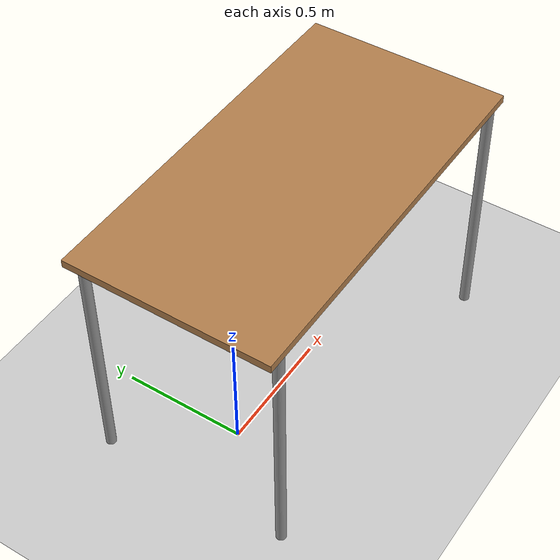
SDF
<?xml version="1.0" ?>
<sdf version="1.4">
  <world name="default">
    <include>
      <uri>model://ground_plane</uri>
    </include>
    <include>
      <uri>model://sun</uri>
    </include>

    <model name="table">
      <include>
        <uri>model://table</uri>
      </include>
      <pose>0.4 0 .002 0 0 0</pose>
    </model>

    <physics type='ode'>
      <ode>
        <solver>
          <type>quick</type>
          <iters>1000</iters>
          <sor>1.3</sor>
        </solver>
        <constraints>
          <cfm>0</cfm>
          <erp>0.2</erp>
          <contact_max_correcting_vel>100</contact_max_correcting_vel>
          <contact_surface_layer>0.001</contact_surface_layer>
        </constraints>
      </ode>
      <max_step_size>0.002</max_step_size>
      <real_time_factor>1</real_time_factor>
      <real_time_update_rate>500</real_time_update_rate>
      <gravity>0 0 -9.8</gravity>
    </physics>
  </world>
</sdf>

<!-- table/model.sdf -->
<sdf version="1.5">
  <model name="table">
    <static>true</static>
    <link name="link">
      <collision name="surface">
        <pose>0 0 1.0 0 0 0</pose>
        <geometry>
          <box>
            <size>1.5 0.8 0.03</size>
          </box>
        </geometry>
        <surface>
          <friction>
            <ode>
              <mu>0.6</mu>
              <mu2>0.6</mu2>
            </ode>
          </friction>
        </surface>
      </collision>
      <visual name="visual1">
        <pose>0 0 1.0 0 0 0</pose>
        <geometry>
          <box>
            <size>1.5 0.8 0.03</size>
          </box>
        </geometry>
        <material>
          <script>
            <uri>model://media/materials/scripts/gazebo.material</uri>
            <name>Gazebo/Wood</name>
          </script>
        </material>
      </visual>
      <collision name="front_left_leg">
        <pose>0.68 0.38 0.5 0 0 0</pose>
        <geometry>
          <cylinder>
            <radius>0.02</radius>
            <length>1.0</length>
          </cylinder>
        </geometry>
      </collision>
      <visual name="front_left_leg">
        <pose>0.68 0.38 0.5 0 0 0</pose>
        <geometry>
          <cylinder>
            <radius>0.02</radius>
            <length>1.0</length>
          </cylinder>
        </geometry>
        <material>
          <script>
            <uri>model://media/materials/scripts/gazebo.material</uri>
            <name>Gazebo/Grey</name>
          </script>
        </material>
      </visual>
      <collision name="front_right_leg">
        <pose>0.68 -0.38 0.5 0 0 0</pose>
        <geometry>
          <cylinder>
            <radius>0.02</radius>
            <length>1.0</length>
          </cylinder>
        </geometry>
      </collision>
      <visual name="front_right_leg">
        <pose>0.68 -0.38 0.5 0 0 0</pose>
        <geometry>
          <cylinder>
            <radius>0.02</radius>
            <length>1.0</length>
          </cylinder>
        </geometry>
        <material>
          <script>
            <uri>model://media/materials/scripts/gazebo.material</uri>
            <name>Gazebo/Grey</name>
          </script>
        </material>
      </visual>
      <collision name="back_right_leg">
        <pose>-0.68 -0.38 0.5 0 0 0</pose>
        <geometry>
          <cylinder>
            <radius>0.02</radius>
            <length>1.0</length>
          </cylinder>
        </geometry>
      </collision>
      <visual name="back_right_leg">
        <pose>-0.68 -0.38 0.5 0 0 0</pose>
        <geometry>
          <cylinder>
            <radius>0.02</radius>
            <length>1.0</length>
          </cylinder>
        </geometry>
        <material>
          <script>
            <uri>model://media/materials/scripts/gazebo.material</uri>
            <name>Gazebo/Grey</name>
          </script>
        </material>
      </visual>
      <collision name="back_left_leg">
        <pose>-0.68 0.38 0.5 0 0 0</pose>
        <geometry>
          <cylinder>
            <radius>0.02</radius>
            <length>1.0</length>
          </cylinder>
        </geometry>
      </collision>
      <visual name="back_left_leg">
        <pose>-0.68 0.38 0.5 0 0 0</pose>
        <geometry>
          <cylinder>
            <radius>0.02</radius>
            <length>1.0</length>
          </cylinder>
        </geometry>
        <material>
          <script>
            <uri>model://media/materials/scripts/gazebo.material</uri>
            <name>Gazebo/Grey</name>
          </script>
        </material>
      </visual>
    </link>
  </model>
</sdf>
